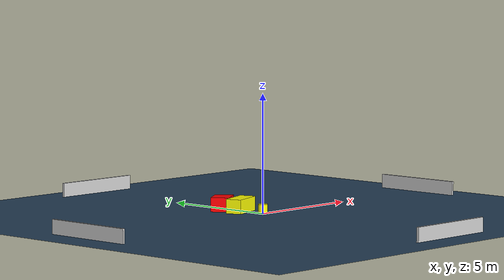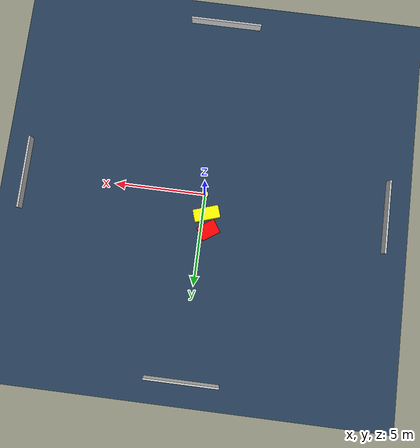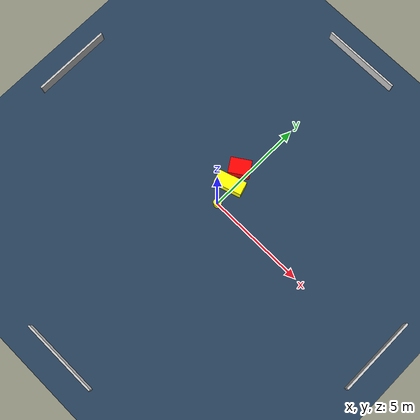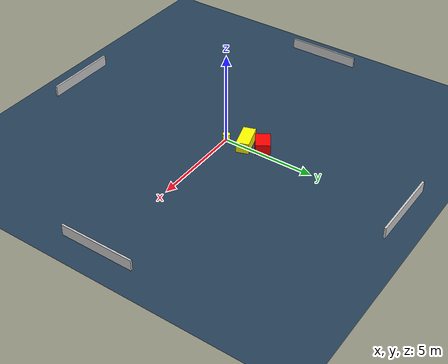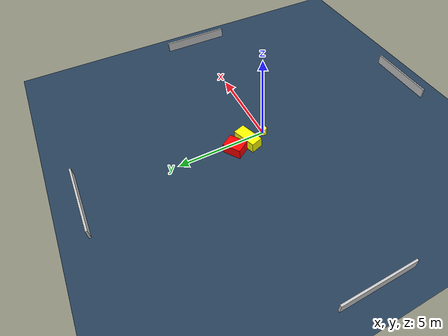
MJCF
<?xml version="1.0" ?>
<mujoco model="generated_environment">
  <option timestep="0.01" integrator="RK4" cone="elliptic"/>
  <default>
    <geom density="1"/>
  </default>
  <asset>
    <texture builtin="gradient" height="3072" name="skybox" rgb1="0.3 0.5 0.7" rgb2="0 0 0" type="skybox" width="512"/>
    <texture builtin="checker" height="300" name="groundplane" rgb1="0.2 0.3 0.4" rgb2="0.1 0.2 0.3" type="2d" width="300"/>
    <material name="groundplane" reflectance="0.2" texrepeat="5 5" texture="groundplane"/>
  </asset>
  <worldbody>
    <light dir="0 0 -1" directional="true" pos="0 0 1.5"/>
    <geom condim="3" friction="0.5 0.005 0.001" material="groundplane" name="floor" pos="0 0 0" size="0 0 0.05" type="plane"/>
    <body name="walls">
      <geom name="wall_1" condim="4" pos="-10.0 0.0 0.3" rgba="0.800000011920929 0.800000011920929 0.800000011920929 1.0" size="0.05 2.0 0.3" type="box"/>
      <geom name="wall_2" condim="4" pos="10.0 0.0 0.3" rgba="0.800000011920929 0.800000011920929 0.800000011920929 1.0" size="0.05 2.0 0.3" type="box"/>
      <geom name="wall_3" condim="4" pos="0.0 -10.0 0.3" rgba="0.800000011920929 0.800000011920929 0.800000011920929 1.0" size="2.0 0.05 0.3" type="box"/>
      <geom name="wall_4" condim="4" pos="0.0 10.0 0.3" rgba="0.800000011920929 0.800000011920929 0.800000011920929 1.0" size="2.0 0.05 0.3" type="box"/>
    </body>
    <body name="robot">
      <joint name="joint_x" type="slide" pos="0 0 0" axis="1 0 0"/>
      <joint name="joint_y" type="slide" pos="0 0 0" axis="0 1 0"/>
      <geom name="robot" type="cylinder" pos="0.0 0.0 0.2" size="0.2 0.2 0.0" mass="5.0" friction="1.0 0.005 0.0001" condim="4" rgba="1.0 1.0 0.0 1.0"/>
    </body>
    <body name="obstacle_1_movable">
      <geom name="obstacle_1_movable" condim="4" pos="-0.2259819292015528 1.064933543340095 0.3" euler="0 0 287.8939856799634" friction="0.0 0.005 0.001" rgba="1.0 1.0 0.0 1.0" size="0.33900139972417365 0.7077083093350993 0.3" type="box" mass="0.1"/>
      <joint type="free"/>
    </body>
    <body name="obstacle_2_static">
      <geom name="obstacle_2_static" condim="4" pos="-0.429785501976474 1.9396291209561407 0.3" euler="0 0 213.43925831232616" friction="0.0 0.005 0.001" rgba="1.0 0.0 0.0 1.0" size="0.5210626966360852 0.38880638127442024 0.3" type="box"/>
    </body>
  </worldbody>
  <actuator>
    <motor name="actuator_x" joint="joint_x" gear="1" ctrlrange="-1 1"/>
    <motor name="actuator_y" joint="joint_y" gear="1" ctrlrange="-1 1"/>
  </actuator>
</mujoco>
